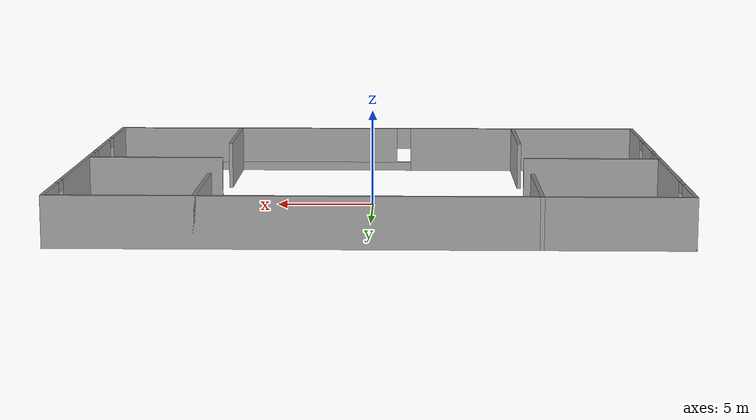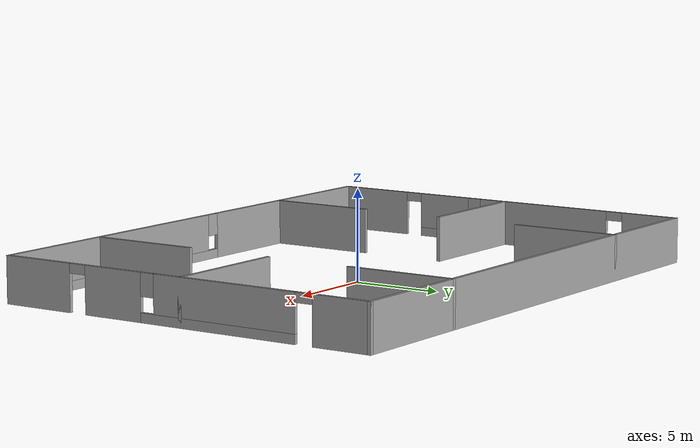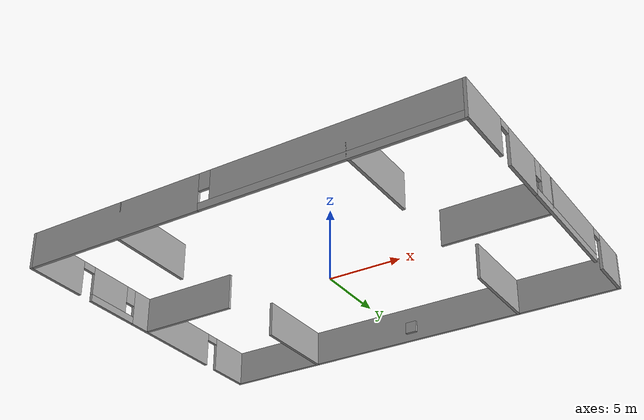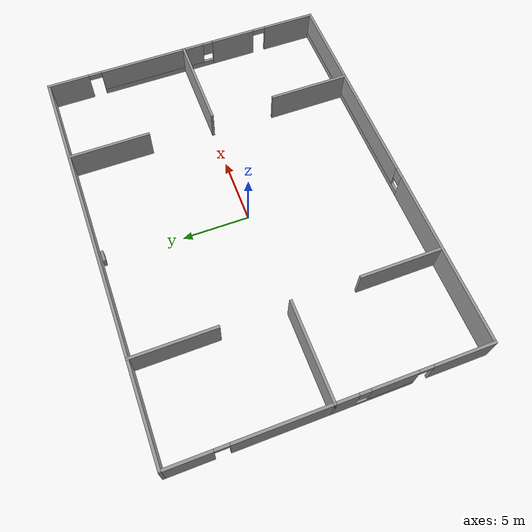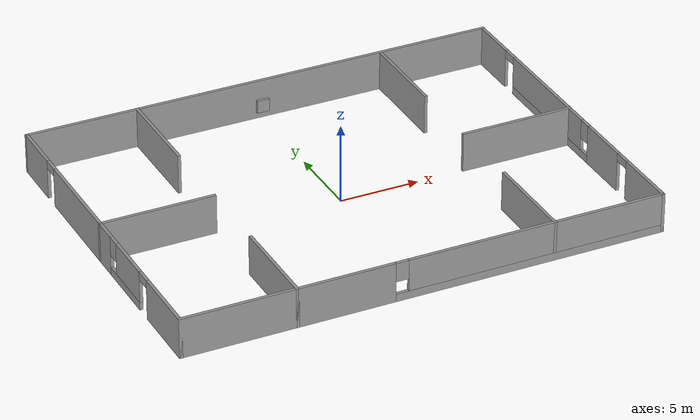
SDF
<?xml version='1.0'?>
<sdf version='1.4'>
  <model name='warehouse'>
    <link name='Wall_56'>
      <collision name='Wall_56_Collision'>
        <geometry>
          <box>
            <size>30.2 0.2 2.5</size>
          </box>
        </geometry>
        <pose>0 0 1.25 0 -0 0</pose>
      </collision>
      <visual name='Wall_56_Visual'>
        <pose>0 0 1.25 0 -0 0</pose>
        <geometry>
          <box>
            <size>30.2 0.2 2.5</size>
          </box>
        </geometry>
        <material>
          <script>
            <uri>file://media/materials/scripts/gazebo.material</uri>
            <name>Gazebo/Grey</name>
          </script>
        </material>
      </visual>
      <velocity_decay>
        <linear>0</linear>
        <angular>0</angular>
      </velocity_decay>
      <pose>0 11 0 0 -0 0</pose>
    </link>
    <link name='Wall_59'>
      <pose>-15 0 0 0 0 -1.5708</pose>
      <visual name='Wall_59_Visual_0'>
        <pose>-9.40044 0 1.25 0 -0 0</pose>
        <geometry>
          <box>
            <size>3.39911 0.2 2.5</size>
          </box>
        </geometry>
        <material>
          <script>
            <uri>file://media/materials/scripts/gazebo.material</uri>
            <name>Gazebo/Grey</name>
          </script>
        </material>
      </visual>
      <collision name='Wall_59_Collision_0'>
        <geometry>
          <box>
            <size>3.39911 0.2 2.5</size>
          </box>
        </geometry>
        <pose>-9.40044 0 1.25 0 -0 0</pose>
      </collision>
      <visual name='Wall_59_Visual_1'>
        <pose>-2.54608 0 1.25 0 -0 0</pose>
        <geometry>
          <box>
            <size>8.30962 0.2 2.5</size>
          </box>
        </geometry>
        <material>
          <script>
            <uri>file://media/materials/scripts/gazebo.material</uri>
            <name>Gazebo/Grey</name>
          </script>
        </material>
      </visual>
      <collision name='Wall_59_Collision_1'>
        <geometry>
          <box>
            <size>8.30962 0.2 2.5</size>
          </box>
        </geometry>
        <pose>-2.54608 0 1.25 0 -0 0</pose>
      </collision>
      <visual name='Wall_59_Visual_2'>
        <pose>8.89141 0 1.25 0 -0 0</pose>
        <geometry>
          <box>
            <size>4.41719 0.2 2.5</size>
          </box>
        </geometry>
        <material>
          <script>
            <uri>file://media/materials/scripts/gazebo.material</uri>
            <name>Gazebo/Grey</name>
          </script>
        </material>
      </visual>
      <collision name='Wall_59_Collision_2'>
        <geometry>
          <box>
            <size>4.41719 0.2 2.5</size>
          </box>
        </geometry>
        <pose>8.89141 0 1.25 0 -0 0</pose>
      </collision>
      <visual name='Wall_59_Visual_3'>
        <pose>3.64577 0 0.25 0 -0 0</pose>
        <geometry>
          <box>
            <size>4.07408 0.2 0.5</size>
          </box>
        </geometry>
        <material>
          <script>
            <uri>file://media/materials/scripts/gazebo.material</uri>
            <name>Gazebo/Grey</name>
          </script>
        </material>
      </visual>
      <collision name='Wall_59_Collision_3'>
        <geometry>
          <box>
            <size>4.07408 0.2 0.5</size>
          </box>
        </geometry>
        <pose>3.64577 0 0.25 0 -0 0</pose>
      </collision>
      <visual name='Wall_59_Visual_4'>
        <pose>4.04577 0 1.5 0 -0 0</pose>
        <geometry>
          <box>
            <size>3.27408 0.2 2</size>
          </box>
        </geometry>
        <material>
          <script>
            <uri>file://media/materials/scripts/gazebo.material</uri>
            <name>Gazebo/Grey</name>
          </script>
        </material>
      </visual>
      <collision name='Wall_59_Collision_4'>
        <geometry>
          <box>
            <size>3.27408 0.2 2</size>
          </box>
        </geometry>
        <pose>4.04577 0 1.5 0 -0 0</pose>
      </collision>
      <visual name='Wall_59_Visual_5'>
        <pose>2.00873 0 1.9 0 -0 0</pose>
        <geometry>
          <box>
            <size>0.8 0.2 1.2</size>
          </box>
        </geometry>
        <material>
          <script>
            <uri>file://media/materials/scripts/gazebo.material</uri>
            <name>Gazebo/Grey</name>
          </script>
        </material>
      </visual>
      <collision name='Wall_59_Collision_5'>
        <geometry>
          <box>
            <size>0.8 0.2 1.2</size>
          </box>
        </geometry>
        <pose>2.00873 0 1.9 0 -0 0</pose>
      </collision>
      <visual name='Wall_59_Visual_6'>
        <pose>-7.20089 0 2.25 0 -0 0</pose>
        <geometry>
          <box>
            <size>1 0.2 0.5</size>
          </box>
        </geometry>
        <material>
          <script>
            <uri>file://media/materials/scripts/gazebo.material</uri>
            <name>Gazebo/Grey</name>
          </script>
        </material>
      </visual>
      <collision name='Wall_59_Collision_6'>
        <geometry>
          <box>
            <size>1 0.2 0.5</size>
          </box>
        </geometry>
        <pose>-7.20089 0 2.25 0 -0 0</pose>
      </collision>
      <visual name='Wall_59_Visual_7'>
        <pose>6.18281 0 2.25 0 -0 0</pose>
        <geometry>
          <box>
            <size>1 0.2 0.5</size>
          </box>
        </geometry>
        <material>
          <script>
            <uri>file://media/materials/scripts/gazebo.material</uri>
            <name>Gazebo/Grey</name>
          </script>
        </material>
      </visual>
      <collision name='Wall_59_Collision_7'>
        <geometry>
          <box>
            <size>1 0.2 0.5</size>
          </box>
        </geometry>
        <pose>6.18281 0 2.25 0 -0 0</pose>
      </collision>
    </link>
    <link name='Wall_61'>
      <pose>0 -11 0 0 -0 0</pose>
      <visual name='Wall_61_Visual_0'>
        <pose>-8.54732 0 1.25 0 -0 0</pose>
        <geometry>
          <box>
            <size>13.1054 0.2 2.5</size>
          </box>
        </geometry>
        <material>
          <script>
            <uri>file://media/materials/scripts/gazebo.material</uri>
            <name>Gazebo/Grey</name>
          </script>
        </material>
      </visual>
      <collision name='Wall_61_Collision_0'>
        <geometry>
          <box>
            <size>13.1054 0.2 2.5</size>
          </box>
        </geometry>
        <pose>-8.54732 0 1.25 0 -0 0</pose>
      </collision>
      <visual name='Wall_61_Visual_1'>
        <pose>6.55268 0 0.25 0 -0 0</pose>
        <geometry>
          <box>
            <size>17.0946 0.2 0.5</size>
          </box>
        </geometry>
        <material>
          <script>
            <uri>file://media/materials/scripts/gazebo.material</uri>
            <name>Gazebo/Grey</name>
          </script>
        </material>
      </visual>
      <collision name='Wall_61_Collision_1'>
        <geometry>
          <box>
            <size>17.0946 0.2 0.5</size>
          </box>
        </geometry>
        <pose>6.55268 0 0.25 0 -0 0</pose>
      </collision>
      <visual name='Wall_61_Visual_2'>
        <pose>6.95268 0 1.5 0 -0 0</pose>
        <geometry>
          <box>
            <size>16.2946 0.2 2</size>
          </box>
        </geometry>
        <material>
          <script>
            <uri>file://media/materials/scripts/gazebo.material</uri>
            <name>Gazebo/Grey</name>
          </script>
        </material>
      </visual>
      <collision name='Wall_61_Collision_2'>
        <geometry>
          <box>
            <size>16.2946 0.2 2</size>
          </box>
        </geometry>
        <pose>6.95268 0 1.5 0 -0 0</pose>
      </collision>
      <visual name='Wall_61_Visual_3'>
        <pose>-1.59464 0 1.9 0 -0 0</pose>
        <geometry>
          <box>
            <size>0.8 0.2 1.2</size>
          </box>
        </geometry>
        <material>
          <script>
            <uri>file://media/materials/scripts/gazebo.material</uri>
            <name>Gazebo/Grey</name>
          </script>
        </material>
      </visual>
      <collision name='Wall_61_Collision_3'>
        <geometry>
          <box>
            <size>0.8 0.2 1.2</size>
          </box>
        </geometry>
        <pose>-1.59464 0 1.9 0 -0 0</pose>
      </collision>
    </link>
    <link name='Wall_62'>
      <pose>15 0 0 0 -0 1.5708</pose>
      <visual name='Wall_62_Visual_0'>
        <pose>-9.01308 0 1.25 0 -0 0</pose>
        <geometry>
          <box>
            <size>4.17385 0.2 2.5</size>
          </box>
        </geometry>
        <material>
          <script>
            <uri>file://media/materials/scripts/gazebo.material</uri>
            <name>Gazebo/Grey</name>
          </script>
        </material>
      </visual>
      <collision name='Wall_62_Collision_0'>
        <geometry>
          <box>
            <size>4.17385 0.2 2.5</size>
          </box>
        </geometry>
        <pose>-9.01308 0 1.25 0 -0 0</pose>
      </collision>
      <visual name='Wall_62_Visual_1'>
        <pose>-4.16744 0 1.25 0 -0 0</pose>
        <geometry>
          <box>
            <size>3.51742 0.2 2.5</size>
          </box>
        </geometry>
        <material>
          <script>
            <uri>file://media/materials/scripts/gazebo.material</uri>
            <name>Gazebo/Grey</name>
          </script>
        </material>
      </visual>
      <collision name='Wall_62_Collision_1'>
        <geometry>
          <box>
            <size>3.51742 0.2 2.5</size>
          </box>
        </geometry>
        <pose>-4.16744 0 1.25 0 -0 0</pose>
      </collision>
      <visual name='Wall_62_Visual_2'>
        <pose>9.46128 0 1.25 0 -0 0</pose>
        <geometry>
          <box>
            <size>3.27744 0.2 2.5</size>
          </box>
        </geometry>
        <material>
          <script>
            <uri>file://media/materials/scripts/gazebo.material</uri>
            <name>Gazebo/Grey</name>
          </script>
        </material>
      </visual>
      <collision name='Wall_62_Collision_2'>
        <geometry>
          <box>
            <size>3.27744 0.2 2.5</size>
          </box>
        </geometry>
        <pose>9.46128 0 1.25 0 -0 0</pose>
      </collision>
      <visual name='Wall_62_Visual_3'>
        <pose>2.20691 0 0.25 0 -0 0</pose>
        <geometry>
          <box>
            <size>9.23129 0.2 0.5</size>
          </box>
        </geometry>
        <material>
          <script>
            <uri>file://media/materials/scripts/gazebo.material</uri>
            <name>Gazebo/Grey</name>
          </script>
        </material>
      </visual>
      <collision name='Wall_62_Collision_3'>
        <geometry>
          <box>
            <size>9.23129 0.2 0.5</size>
          </box>
        </geometry>
        <pose>2.20691 0 0.25 0 -0 0</pose>
      </collision>
      <visual name='Wall_62_Visual_4'>
        <pose>2.60691 0 1.5 0 -0 0</pose>
        <geometry>
          <box>
            <size>8.43129 0.2 2</size>
          </box>
        </geometry>
        <material>
          <script>
            <uri>file://media/materials/scripts/gazebo.material</uri>
            <name>Gazebo/Grey</name>
          </script>
        </material>
      </visual>
      <collision name='Wall_62_Collision_4'>
        <geometry>
          <box>
            <size>8.43129 0.2 2</size>
          </box>
        </geometry>
        <pose>2.60691 0 1.5 0 -0 0</pose>
      </collision>
      <visual name='Wall_62_Visual_5'>
        <pose>-2.00873 0 1.9 0 -0 0</pose>
        <geometry>
          <box>
            <size>0.8 0.2 1.2</size>
          </box>
        </geometry>
        <material>
          <script>
            <uri>file://media/materials/scripts/gazebo.material</uri>
            <name>Gazebo/Grey</name>
          </script>
        </material>
      </visual>
      <collision name='Wall_62_Collision_5'>
        <geometry>
          <box>
            <size>0.8 0.2 1.2</size>
          </box>
        </geometry>
        <pose>-2.00873 0 1.9 0 -0 0</pose>
      </collision>
      <visual name='Wall_62_Visual_6'>
        <pose>-6.42615 0 2.25 0 -0 0</pose>
        <geometry>
          <box>
            <size>1 0.2 0.5</size>
          </box>
        </geometry>
        <material>
          <script>
            <uri>file://media/materials/scripts/gazebo.material</uri>
            <name>Gazebo/Grey</name>
          </script>
        </material>
      </visual>
      <collision name='Wall_62_Collision_6'>
        <geometry>
          <box>
            <size>1 0.2 0.5</size>
          </box>
        </geometry>
        <pose>-6.42615 0 2.25 0 -0 0</pose>
      </collision>
      <visual name='Wall_62_Visual_7'>
        <pose>7.32256 0 2.25 0 -0 0</pose>
        <geometry>
          <box>
            <size>1 0.2 0.5</size>
          </box>
        </geometry>
        <material>
          <script>
            <uri>file://media/materials/scripts/gazebo.material</uri>
            <name>Gazebo/Grey</name>
          </script>
        </material>
      </visual>
      <collision name='Wall_62_Collision_7'>
        <geometry>
          <box>
            <size>1 0.2 0.5</size>
          </box>
        </geometry>
        <pose>7.32256 0 2.25 0 -0 0</pose>
      </collision>
    </link>
    <link name='Wall_64'>
      <collision name='Wall_64_Collision'>
        <geometry>
          <box>
            <size>6.2 0.2 2.5</size>
          </box>
        </geometry>
        <pose>0 0 1.25 0 -0 0</pose>
      </collision>
      <visual name='Wall_64_Visual'>
        <pose>0 0 1.25 0 -0 0</pose>
        <geometry>
          <box>
            <size>6.2 0.2 2.5</size>
          </box>
        </geometry>
        <material>
          <script>
            <uri>file://media/materials/scripts/gazebo.material</uri>
            <name>Gazebo/Grey</name>
          </script>
        </material>
      </visual>
      <velocity_decay>
        <linear>0</linear>
        <angular>0</angular>
      </velocity_decay>
      <pose>-8 -8 0 0 -0 1.5708</pose>
    </link>
    <link name='Wall_66'>
      <collision name='Wall_66_Collision'>
        <geometry>
          <box>
            <size>6.2 0.2 2.5</size>
          </box>
        </geometry>
        <pose>0 0 1.25 0 -0 0</pose>
      </collision>
      <visual name='Wall_66_Visual'>
        <pose>0 0 1.25 0 -0 0</pose>
        <geometry>
          <box>
            <size>6.2 0.2 2.5</size>
          </box>
        </geometry>
        <material>
          <script>
            <uri>file://media/materials/scripts/gazebo.material</uri>
            <name>Gazebo/Grey</name>
          </script>
        </material>
      </visual>
      <velocity_decay>
        <linear>0</linear>
        <angular>0</angular>
      </velocity_decay>
      <pose>8 -8 0 0 -0 1.5708</pose>
    </link>
    <link name='Wall_68'>
      <collision name='Wall_68_Collision'>
        <geometry>
          <box>
            <size>6.2 0.2 2.5</size>
          </box>
        </geometry>
        <pose>0 0 1.25 0 -0 0</pose>
      </collision>
      <visual name='Wall_68_Visual'>
        <pose>0 0 1.25 0 -0 0</pose>
        <geometry>
          <box>
            <size>6.2 0.2 2.5</size>
          </box>
        </geometry>
        <material>
          <script>
            <uri>file://media/materials/scripts/gazebo.material</uri>
            <name>Gazebo/Grey</name>
          </script>
        </material>
      </visual>
      <velocity_decay>
        <linear>0</linear>
        <angular>0</angular>
      </velocity_decay>
      <pose>-8 8 0 0 -0 1.5708</pose>
    </link>
    <link name='Wall_70'>
      <collision name='Wall_70_Collision'>
        <geometry>
          <box>
            <size>6.2 0.2 2.5</size>
          </box>
        </geometry>
        <pose>0 0 1.25 0 -0 0</pose>
      </collision>
      <visual name='Wall_70_Visual'>
        <pose>0 0 1.25 0 -0 0</pose>
        <geometry>
          <box>
            <size>6.2 0.2 2.5</size>
          </box>
        </geometry>
        <material>
          <script>
            <uri>file://media/materials/scripts/gazebo.material</uri>
            <name>Gazebo/Grey</name>
          </script>
        </material>
      </visual>
      <velocity_decay>
        <linear>0</linear>
        <angular>0</angular>
      </velocity_decay>
      <pose>8 8 0 0 -0 1.5708</pose>
    </link>
    <link name='Wall_72'>
      <collision name='Wall_72_Collision'>
        <geometry>
          <box>
            <size>7.2 0.2 2.5</size>
          </box>
        </geometry>
        <pose>0 0 1.25 0 -0 0</pose>
      </collision>
      <visual name='Wall_72_Visual'>
        <pose>0 0 1.25 0 -0 0</pose>
        <geometry>
          <box>
            <size>7.2 0.2 2.5</size>
          </box>
        </geometry>
        <material>
          <script>
            <uri>file://media/materials/scripts/gazebo.material</uri>
            <name>Gazebo/Grey</name>
          </script>
        </material>
      </visual>
      <velocity_decay>
        <linear>0</linear>
        <angular>0</angular>
      </velocity_decay>
      <pose>-11.5 0 0 0 -0 0</pose>
    </link>
    <link name='Wall_75'>
      <collision name='Wall_75_Collision'>
        <geometry>
          <box>
            <size>7.2 0.2 2.5</size>
          </box>
        </geometry>
        <pose>0 0 1.25 0 -0 0</pose>
      </collision>
      <visual name='Wall_75_Visual'>
        <pose>0 0 1.25 0 -0 0</pose>
        <geometry>
          <box>
            <size>7.2 0.2 2.5</size>
          </box>
        </geometry>
        <material>
          <script>
            <uri>file://media/materials/scripts/gazebo.material</uri>
            <name>Gazebo/Grey</name>
          </script>
        </material>
      </visual>
      <velocity_decay>
        <linear>0</linear>
        <angular>0</angular>
      </velocity_decay>
      <pose>11.5 0 0 0 -0 0</pose>
    </link>
    <link name='Window_6'>
      <collision name='Window_6_Collision'>
        <geometry>
          <box>
            <size>0.8 0.2 0.8</size>
          </box>
        </geometry>
        <pose>0 0 0.4 0 -0 0</pose>
      </collision>
      <visual name='Window_6_Visual'>
        <pose>0 0 0.4 0 -0 0</pose>
        <geometry>
          <box>
            <size>0.8 0.2 0.8</size>
          </box>
        </geometry>
        <material>
          <script>
            <uri>file://media/materials/scripts/gazebo.material</uri>
            <name>Gazebo/Grey</name>
          </script>
        </material>
      </visual>
      <velocity_decay>
        <linear>0</linear>
        <angular>0</angular>
      </velocity_decay>
      <pose>0.009131 10.7167 0.5 0 -0 0</pose>
    </link>
    <static>1</static>
  </model>
</sdf>
